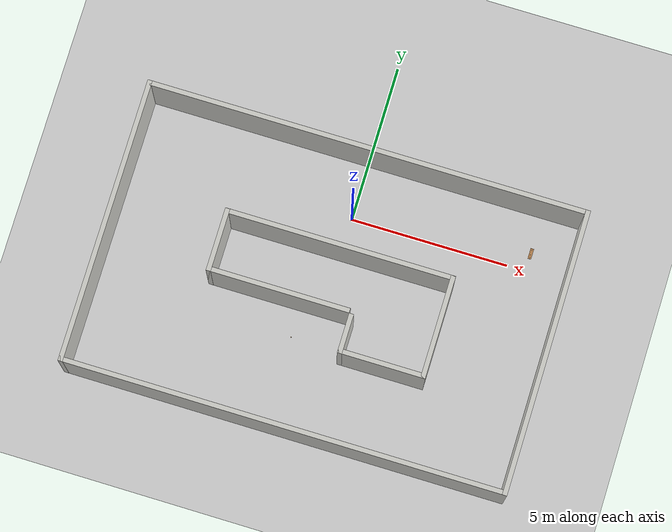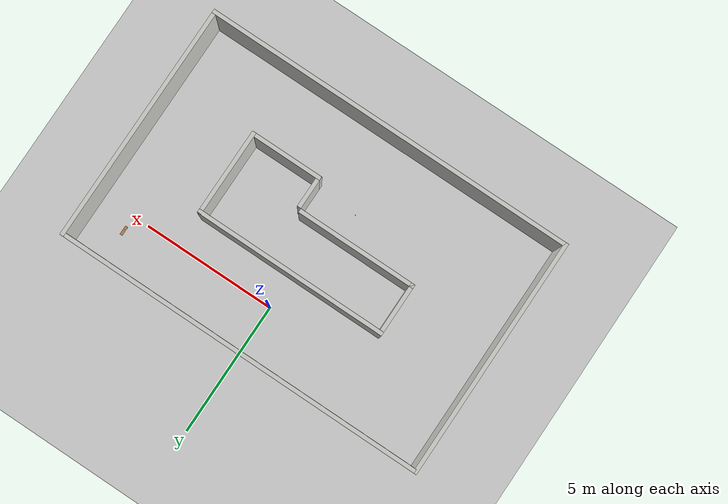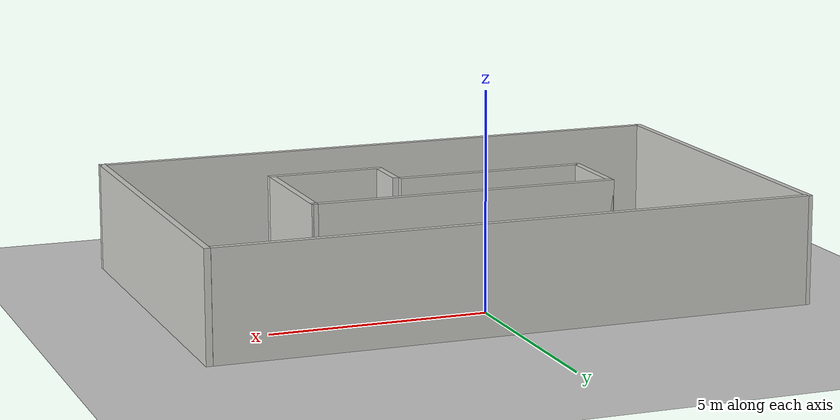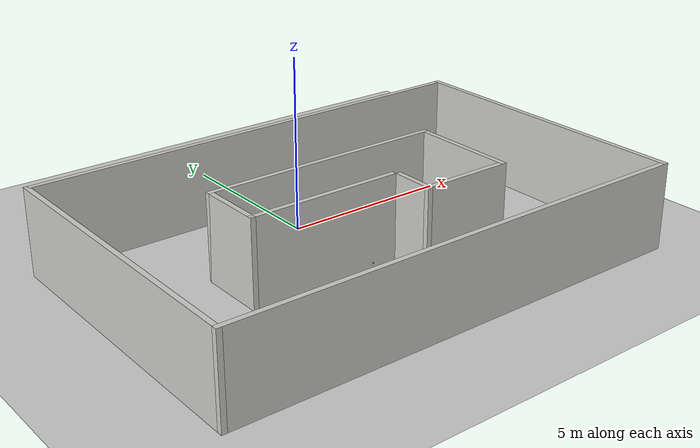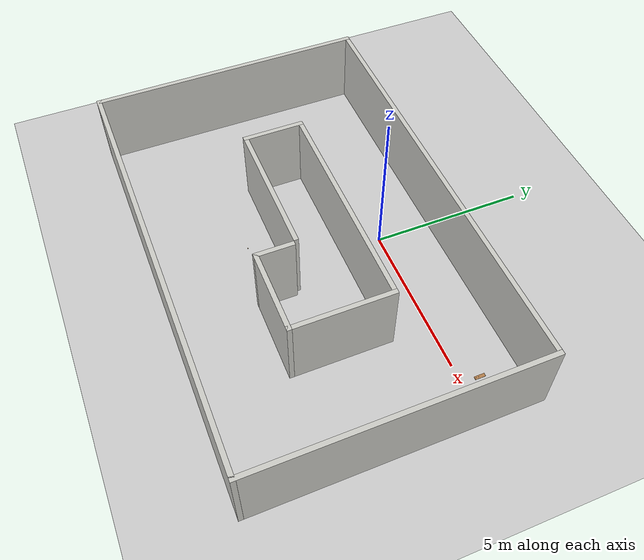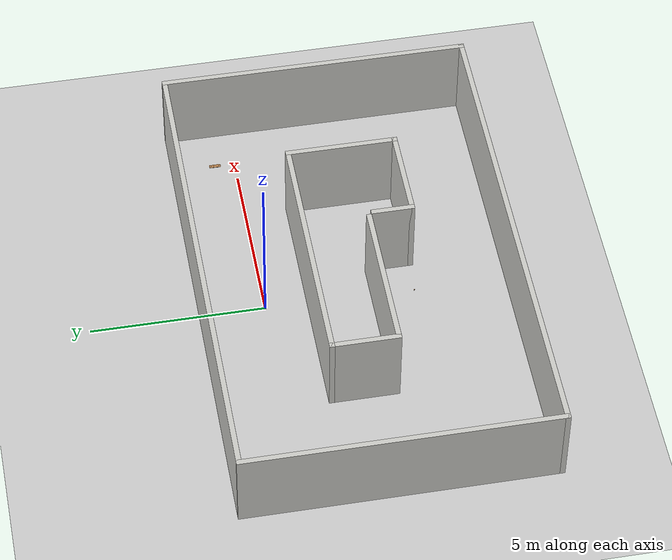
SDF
<sdf version="1.7">
 <world name="default">
  <light name="sun" type="directional">
   <pose>0 0 10 0 -0 0</pose>
   <diffuse>0.8 0.8 0.8 1</diffuse>
   <specular>0.2 0.2 0.2 1</specular>
   <attenuation>
    <range>1000</range>
    <constant>0.9</constant>
    <linear>0.01</linear>
    <quadratic>0.001</quadratic>
   </attenuation>
   <direction>-0.5 0.1 -0.9</direction>
   <spot><inner_angle>0</inner_angle><outer_angle>0</outer_angle><falloff>0</falloff></spot>
  </light>
  <model name="ground_plane">
   <static>1</static>
   <link name="link">
    <collision name="collision">
     <geometry><plane><normal>0 0 1</normal><size>100 100</size></plane></geometry>
     <surface><friction><ode><mu>100</mu><mu2>50</mu2></ode></friction></surface>
    </collision>
    <visual name="visual">
     <cast_shadows>0</cast_shadows>
     <geometry><plane><normal>0 0 1</normal><size>100 100</size></plane></geometry>
     <material>
      <script><uri>file://media/materials/scripts/gazebo.material</uri><name>Gazebo/Grey</name></script>
     </material>
    </visual>
    <velocity_decay><linear>0</linear><angular>0</angular></velocity_decay>
   </link>
  </model>
  <physics name="default_physics" default="0" type="ode">
   <max_step_size>0.001</max_step_size>
   <real_time_factor>1</real_time_factor>
   <real_time_update_rate>1000</real_time_update_rate>
  </physics>
  <scene><ambient>0.4 0.4 0.4 1</ambient><background>0.7 0.7 0.7 1</background><shadows>1</shadows></scene>
  <spherical_coordinates>
   <surface_model>EARTH_WGS84</surface_model>
   <latitude_deg>0</latitude_deg>
   <longitude_deg>0</longitude_deg>
   <elevation>0</elevation>
   <heading_deg>0</heading_deg>
  </spherical_coordinates>
  <gravity>0 0 -9.8</gravity>
  <magnetic_field>6e-06 2.3e-05 -4.2e-05</magnetic_field>
  <atmosphere type="adiabatic"/>
  <model name="room_0">
   <pose>-0.064136 -2.60385 0 0 -0 0</pose>
   <link name="Wall_0">
    <collision name="Wall_0_Collision">
     <geometry><box><size>13.75 0.15 2.5</size></box></geometry>
     <pose>0 0 1.25 0 -0 0</pose>
    </collision>
    <visual name="Wall_0_Visual">
     <pose>0 0 1.25 0 -0 0</pose>
     <geometry><box><size>13.75 0.15 2.5</size></box></geometry>
     <material>
      <script><uri>file://media/materials/scripts/gazebo.material</uri><name>Gazebo/CeilingTiled</name></script>
      <ambient>1 1 1 1</ambient>
     </material>
    </visual>
    <pose>-0.027328 4.425 0 0 -0 0</pose>
   </link>
   <link name="Wall_12">
    <collision name="Wall_12_Collision">
     <geometry><box><size>2 0.15 2.5</size></box></geometry>
     <pose>0 0 1.25 0 -0 0</pose>
    </collision>
    <visual name="Wall_12_Visual">
     <pose>0 0 1.25 0 -0 0</pose>
     <geometry><box><size>2 0.15 2.5</size></box></geometry>
     <material>
      <script><uri>file://media/materials/scripts/gazebo.material</uri><name>Gazebo/CeilingTiled</name></script>
      <ambient>1 1 1 1</ambient>
     </material>
    </visual>
    <pose>-3.49908 0.404259 0 0 0 -1.5708</pose>
   </link>
   <link name="Wall_13">
    <collision name="Wall_13_Collision">
     <geometry><box><size>4.5 0.15 2.5</size></box></geometry>
     <pose>0 0 1.25 0 -0 0</pose>
    </collision>
    <visual name="Wall_13_Visual">
     <pose>0 0 1.25 0 -0 0</pose>
     <geometry><box><size>4.5 0.15 2.5</size></box></geometry>
     <material>
      <script><uri>file://media/materials/scripts/gazebo.material</uri><name>Gazebo/CeilingTiled</name></script>
      <ambient>1 1 1 1</ambient>
     </material>
    </visual>
    <pose>-1.32408 -0.520741 0 0 -0 0</pose>
   </link>
   <link name="Wall_2">
    <collision name="Wall_2_Collision">
     <geometry><box><size>9 0.15 2.5</size></box></geometry>
     <pose>0 0 1.25 0 -0 0</pose>
    </collision>
    <visual name="Wall_2_Visual">
     <pose>0 0 1.25 0 -0 0</pose>
     <geometry><box><size>9 0.15 2.5</size></box></geometry>
     <material>
      <script><uri>file://media/materials/scripts/gazebo.material</uri><name>Gazebo/CeilingTiled</name></script>
      <ambient>1 1 1 1</ambient>
     </material>
    </visual>
    <pose>6.925 0 0 0 0 -1.5708</pose>
   </link>
   <link name="Wall_3">
    <collision name="Wall_3_Collision">
     <geometry><box><size>14 0.15 2.5</size></box></geometry>
     <pose>0 0 1.25 0 -0 0</pose>
    </collision>
    <visual name="Wall_3_Visual">
     <pose>0 0 1.25 0 -0 0</pose>
     <geometry><box><size>14 0.15 2.5</size></box></geometry>
     <material>
      <script><uri>file://media/materials/scripts/gazebo.material</uri><name>Gazebo/CeilingTiled</name></script>
      <ambient>1 1 1 1</ambient>
     </material>
    </visual>
    <pose>0 -4.425 0 0 -0 3.14159</pose>
   </link>
   <link name="Wall_4">
    <collision name="Wall_4_Collision">
     <geometry><box><size>9 0.15 2.5</size></box></geometry>
     <pose>0 0 1.25 0 -0 0</pose>
    </collision>
    <visual name="Wall_4_Visual">
     <pose>0 0 1.25 0 -0 0</pose>
     <geometry><box><size>9 0.15 2.5</size></box></geometry>
     <material>
      <script><uri>file://media/materials/scripts/gazebo.material</uri><name>Gazebo/CeilingTiled</name></script>
      <ambient>1 1 1 1</ambient>
     </material>
    </visual>
    <pose>-6.925 0 0 0 -0 1.5708</pose>
   </link>
   <link name="Wall_6">
    <collision name="Wall_6_Collision">
     <geometry><box><size>7.25 0.15 2.5</size></box></geometry>
     <pose>0 0 1.25 0 -0 0</pose>
    </collision>
    <visual name="Wall_6_Visual">
     <pose>0 0 1.25 0 -0 0</pose>
     <geometry><box><size>7.25 0.15 2.5</size></box></geometry>
     <material>
      <script><uri>file://media/materials/scripts/gazebo.material</uri><name>Gazebo/CeilingTiled</name></script>
      <ambient>1 1 1 1</ambient>
     </material>
    </visual>
    <pose>0.050923 1.32926 0 0 -0 0</pose>
   </link>
   <link name="Wall_7">
    <collision name="Wall_7_Collision">
     <geometry><box><size>3.25 0.15 2.5</size></box></geometry>
     <pose>0 0 1.25 0 -0 0</pose>
    </collision>
    <visual name="Wall_7_Visual">
     <pose>0 0 1.25 0 -0 0</pose>
     <geometry><box><size>3.25 0.15 2.5</size></box></geometry>
     <material>
      <script><uri>file://media/materials/scripts/gazebo.material</uri><name>Gazebo/CeilingTiled</name></script>
      <ambient>1 1 1 1</ambient>
     </material>
    </visual>
    <pose>3.60092 -0.220741 0 0 0 -1.5708</pose>
   </link>
   <link name="Wall_8">
    <collision name="Wall_8_Collision">
     <geometry><box><size>2.75 0.15 2.5</size></box></geometry>
     <pose>0 0 1.25 0 -0 0</pose>
    </collision>
    <visual name="Wall_8_Visual">
     <pose>0 0 1.25 0 -0 0</pose>
     <geometry><box><size>2.75 0.15 2.5</size></box></geometry>
     <material>
      <script><uri>file://media/materials/scripts/gazebo.material</uri><name>Gazebo/CeilingTiled</name></script>
      <ambient>1 1 1 1</ambient>
     </material>
    </visual>
    <pose>2.30092 -1.77074 0 0 -0 3.14159</pose>
   </link>
   <link name="Wall_9">
    <collision name="Wall_9_Collision">
     <geometry><box><size>1.25 0.15 2.5</size></box></geometry>
     <pose>0 0 1.25 0 -0 0</pose>
    </collision>
    <visual name="Wall_9_Visual">
     <pose>0 0 1.25 0 -0 0</pose>
     <geometry><box><size>1.25 0.15 2.5</size></box></geometry>
     <material>
      <script><uri>file://media/materials/scripts/gazebo.material</uri><name>Gazebo/CeilingTiled</name></script>
      <ambient>1 1 1 1</ambient>
     </material>
    </visual>
    <pose>1.00092 -1.22074 0 0 -0 1.5708</pose>
   </link>
   <static>1</static>
  </model>
  <model name="jimu">
   <link name="link_0">
    <inertial>
     <mass>0.05</mass>
     <inertia>
      <ixx>2.083e-05</ixx>
      <ixy>0</ixy>
      <ixz>0</ixz>
      <iyy>2.083e-05</iyy>
      <iyz>0</iyz>
      <izz>2.083e-05</izz>
     </inertia>
     <pose>0 0 -0.05 0 -0 0</pose>
    </inertial>
    <visual name="visual">
     <geometry><box><size>0.05 0.05 0.05</size></box></geometry>
     <material>
      <lighting>1</lighting>
      <script><uri>file://media/materials/scripts/gazebo.material</uri><name>Gazebo/Grey</name></script>
      <shader type="pixel"><normal_map>__default__</normal_map></shader>
      <ambient>0.3 0.3 0.3 1</ambient>
      <diffuse>0.7 0.7 0.7 1</diffuse>
      <specular>0.01 0.01 0.01 1</specular>
      <emissive>0 0 0 1</emissive>
     </material>
    </visual>
    <collision name="collision_1">
     <geometry><box><size>0.05 0.05 0.05</size></box></geometry>
     <surface>
      <friction>
       <ode><mu>1</mu><mu2>1</mu2><fdir1>0 0 0</fdir1><slip1>0</slip1><slip2>0</slip2></ode>
       <torsional>
        <coefficient>1</coefficient>
        <patch_radius>0</patch_radius>
        <surface_radius>0</surface_radius>
        <use_patch_radius>1</use_patch_radius>
        <ode><slip>0</slip></ode>
       </torsional>
      </friction>
      <bounce><restitution_coefficient>0</restitution_coefficient><threshold>1e+06</threshold></bounce>
      <contact>
       <collide_without_contact>0</collide_without_contact>
       <collide_without_contact_bitmask>1</collide_without_contact_bitmask>
       <collide_bitmask>1</collide_bitmask>
       <ode>
        <soft_cfm>0</soft_cfm>
        <soft_erp>0.2</soft_erp>
        <kp>1e+13</kp>
        <kd>1</kd>
        <max_vel>0.01</max_vel>
        <min_depth>0</min_depth>
       </ode>
       <bullet>
        <split_impulse>1</split_impulse>
        <split_impulse_penetration_threshold>-0.01</split_impulse_penetration_threshold>
        <soft_cfm>0</soft_cfm>
        <soft_erp>0.2</soft_erp>
        <kp>1e+13</kp>
        <kd>1</kd>
       </bullet>
      </contact>
     </surface>
    </collision>
    <collision name="collision_2">
     <geometry><sphere><radius>1.79769e+308</radius></sphere></geometry>
     <surface>
      <friction>
       <ode><mu>1</mu><mu2>1</mu2><fdir1>0 0 0</fdir1><slip1>0</slip1><slip2>0</slip2></ode>
       <torsional>
        <coefficient>1</coefficient>
        <patch_radius>0</patch_radius>
        <surface_radius>0</surface_radius>
        <use_patch_radius>1</use_patch_radius>
        <ode><slip>0</slip></ode>
       </torsional>
      </friction>
      <bounce><restitution_coefficient>0</restitution_coefficient><threshold>1e+06</threshold></bounce>
      <contact>
       <collide_without_contact>0</collide_without_contact>
       <collide_without_contact_bitmask>1</collide_without_contact_bitmask>
       <collide_bitmask>1</collide_bitmask>
       <ode>
        <soft_cfm>0</soft_cfm>
        <soft_erp>0.2</soft_erp>
        <kp>1e+13</kp>
        <kd>1</kd>
        <max_vel>0.01</max_vel>
        <min_depth>0</min_depth>
       </ode>
       <bullet>
        <split_impulse>1</split_impulse>
        <split_impulse_penetration_threshold>-0.01</split_impulse_penetration_threshold>
        <soft_cfm>0</soft_cfm>
        <soft_erp>0.2</soft_erp>
        <kp>1e+13</kp>
        <kd>1</kd>
       </bullet>
      </contact>
     </surface>
    </collision>
    <collision name="collision_4">
     <geometry><box><size>0.05 0.05 0.05</size></box></geometry>
     <surface>
      <friction>
       <ode><mu>1</mu><mu2>1</mu2><fdir1>0 0 0</fdir1><slip1>0</slip1><slip2>0</slip2></ode>
       <torsional>
        <coefficient>1</coefficient>
        <patch_radius>0</patch_radius>
        <surface_radius>0</surface_radius>
        <use_patch_radius>1</use_patch_radius>
        <ode><slip>0</slip></ode>
       </torsional>
      </friction>
      <bounce><restitution_coefficient>0</restitution_coefficient><threshold>1e+06</threshold></bounce>
      <contact>
       <collide_without_contact>0</collide_without_contact>
       <collide_without_contact_bitmask>1</collide_without_contact_bitmask>
       <collide_bitmask>1</collide_bitmask>
       <ode>
        <soft_cfm>0</soft_cfm>
        <soft_erp>0.2</soft_erp>
        <kp>1e+13</kp>
        <kd>1</kd>
        <max_vel>0.01</max_vel>
        <min_depth>0</min_depth>
       </ode>
       <bullet>
        <split_impulse>1</split_impulse>
        <split_impulse_penetration_threshold>-0.01</split_impulse_penetration_threshold>
        <soft_cfm>0</soft_cfm>
        <soft_erp>0.2</soft_erp>
        <kp>1e+13</kp>
        <kd>1</kd>
       </bullet>
      </contact>
     </surface>
    </collision>
    <collision name="collision_3">
     <geometry><cylinder><radius>0.035355</radius><length>0.05</length></cylinder></geometry>
     <surface>
      <friction>
       <ode><mu>1</mu><mu2>1</mu2><fdir1>0 0 0</fdir1><slip1>0</slip1><slip2>0</slip2></ode>
       <torsional>
        <coefficient>1</coefficient>
        <patch_radius>0</patch_radius>
        <surface_radius>0</surface_radius>
        <use_patch_radius>1</use_patch_radius>
        <ode><slip>0</slip></ode>
       </torsional>
      </friction>
      <bounce><restitution_coefficient>0</restitution_coefficient><threshold>1e+06</threshold></bounce>
      <contact>
       <collide_without_contact>0</collide_without_contact>
       <collide_without_contact_bitmask>1</collide_without_contact_bitmask>
       <collide_bitmask>1</collide_bitmask>
       <ode>
        <soft_cfm>0</soft_cfm>
        <soft_erp>0.2</soft_erp>
        <kp>1e+13</kp>
        <kd>1</kd>
        <max_vel>0.01</max_vel>
        <min_depth>0</min_depth>
       </ode>
       <bullet>
        <split_impulse>1</split_impulse>
        <split_impulse_penetration_threshold>-0.01</split_impulse_penetration_threshold>
        <soft_cfm>0</soft_cfm>
        <soft_erp>0.2</soft_erp>
        <kp>1e+13</kp>
        <kd>1</kd>
       </bullet>
      </contact>
     </surface>
    </collision>
    <collision name="collision">
     <geometry><box><size>0.05 0.05 0.05</size></box></geometry>
     <surface>
      <friction>
       <ode><mu>1</mu><mu2>1</mu2><fdir1>0 0 0</fdir1><slip1>0</slip1><slip2>0</slip2></ode>
       <torsional>
        <coefficient>1</coefficient>
        <patch_radius>0</patch_radius>
        <surface_radius>0</surface_radius>
        <use_patch_radius>1</use_patch_radius>
        <ode><slip>0</slip></ode>
       </torsional>
      </friction>
      <bounce><restitution_coefficient>0</restitution_coefficient><threshold>1e+06</threshold></bounce>
      <contact>
       <collide_without_contact>0</collide_without_contact>
       <collide_without_contact_bitmask>1</collide_without_contact_bitmask>
       <collide_bitmask>1</collide_bitmask>
       <ode>
        <soft_cfm>0</soft_cfm>
        <soft_erp>0.2</soft_erp>
        <kp>1e+13</kp>
        <kd>1</kd>
        <max_vel>0.01</max_vel>
        <min_depth>0</min_depth>
       </ode>
       <bullet>
        <split_impulse>1</split_impulse>
        <split_impulse_penetration_threshold>-0.01</split_impulse_penetration_threshold>
        <soft_cfm>0</soft_cfm>
        <soft_erp>0.2</soft_erp>
        <kp>1e+13</kp>
        <kd>1</kd>
       </bullet>
      </contact>
     </surface>
    </collision>
   </link>
   <static>0</static>
  </model>
  <model name="wooden_board">
   <link name="base">
    <pose>0 0 0.00523 0 -0 0</pose>
    <inertial>
     <mass>0.2765</mass>
     <inertia>
      <ixx>0.0025148</ixx>
      <ixy>0</ixy>
      <ixz>0</ixz>
      <iyy>0.00024037</iyy>
      <iyz>0</iyz>
      <izz>0.00275013</izz>
     </inertia>
    </inertial>
    <collision name="collision">
     <geometry><box><size>0.1016 0.3302 0.01046</size></box></geometry>
     <surface>
      <contact>
       <poissons_ratio>0.347</poissons_ratio>
       <elastic_modulus>8.8e+09</elastic_modulus>
       <ode><kp>100000</kp><kd>100</kd><max_vel>100</max_vel><min_depth>0.001</min_depth></ode>
      </contact>
      <friction>
       <torsional>
        <coefficient>1</coefficient>
        <use_patch_radius>0</use_patch_radius>
        <surface_radius>0.01</surface_radius>
       </torsional>
      </friction>
     </surface>
    </collision>
    <visual name="visual">
     <geometry><box><size>0.1016 0.3302 0.01046</size></box></geometry>
     <material>
      <script><uri>file://media/materials/scripts/gazebo.material</uri><name>Gazebo/Wood</name></script>
     </material>
    </visual>
    <visual name="tee_nut_1">
     <pose>0 -0.116 0 0 -0 0</pose>
     <geometry><cylinder><radius>0.00635</radius><length>0.0105646</length></cylinder></geometry>
     <material>
      <script><uri>file://media/materials/scripts/gazebo.material</uri><name>Gazebo/Grey</name></script>
     </material>
    </visual>
    <visual name="tee_nut_2">
     <pose>0 -0.038 0 0 -0 0</pose>
     <geometry><cylinder><radius>0.00635</radius><length>0.0105646</length></cylinder></geometry>
     <material>
      <script><uri>file://media/materials/scripts/gazebo.material</uri><name>Gazebo/Grey</name></script>
     </material>
    </visual>
    <visual name="tee_nut_3">
     <pose>0 0.038 0 0 -0 0</pose>
     <geometry><cylinder><radius>0.00635</radius><length>0.0105646</length></cylinder></geometry>
     <material>
      <script><uri>file://media/materials/scripts/gazebo.material</uri><name>Gazebo/Grey</name></script>
     </material>
    </visual>
    <visual name="tee_nut_4">
     <pose>0 0.116 0 0 -0 0</pose>
     <geometry><cylinder><radius>0.00635</radius><length>0.0105646</length></cylinder></geometry>
     <material>
      <script><uri>file://media/materials/scripts/gazebo.material</uri><name>Gazebo/Grey</name></script>
     </material>
    </visual>
   </link>
   <pose>5.60393 0.583244 -0.001007 0 -0 0</pose>
  </model>
  <model name="wood_cube_2_5cm">
   <link name="link">
    <pose>0 0 0.0125 0 -0 0</pose>
    <inertial>
     <mass>0.0073</mass>
     <inertia>
      <ixx>7.60417e-07</ixx>
      <ixy>0</ixy>
      <ixz>0</ixz>
      <iyy>7.60417e-07</iyy>
      <iyz>0</iyz>
      <izz>7.60417e-07</izz>
     </inertia>
    </inertial>
    <collision name="collision">
     <geometry><box><size>0.025 0.025 0.025</size></box></geometry>
     <surface>
      <contact>
       <poissons_ratio>0.347</poissons_ratio>
       <elastic_modulus>8.8e+09</elastic_modulus>
       <ode><kp>100000</kp><kd>100</kd><max_vel>100</max_vel><min_depth>0.001</min_depth></ode>
      </contact>
      <friction>
       <torsional>
        <coefficient>1</coefficient>
        <use_patch_radius>0</use_patch_radius>
        <surface_radius>0.01</surface_radius>
       </torsional>
      </friction>
     </surface>
    </collision>
    <visual name="visual">
     <geometry><box><size>0.025 0.025 0.025</size></box></geometry>
     <material>
      <script><uri>file://media/materials/scripts/gazebo.material</uri><name>Gazebo/Wood</name></script>
     </material>
    </visual>
   </link>
   <pose>-0.680392 -4.17321 0.774162 -0.004462 1.3e-05 1e-06</pose>
  </model>
 </world>
</sdf>
